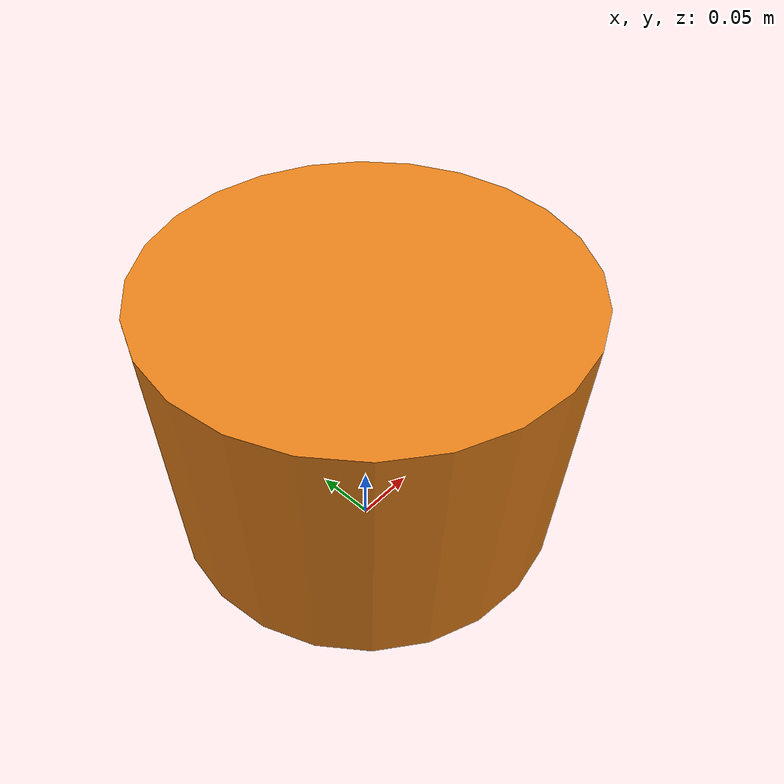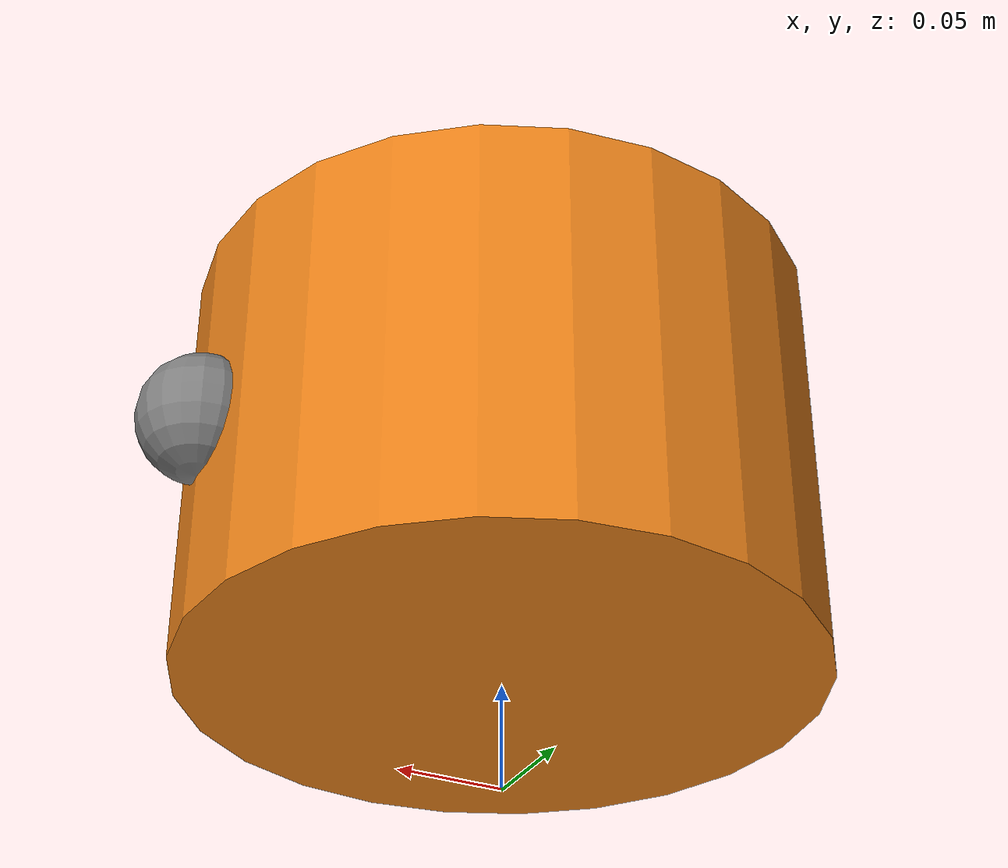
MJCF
<mujoco>

    <compiler autolimits="true"/>

    <default>
        <joint damping="0.1"/>
        <geom contype="1"
              conaffinity="1"/>
    </default>

    <worldbody>

        <!-- robot -->

        <body name="robot"
              pos="0 0 0.15">

            <joint name="tx"
                   type="slide"
                   axis="1 0 0"/>

            <joint name="ty"
                   type="slide"
                   axis="0 1 0"/>

            <!-- rotation -->
            <joint name="rz"
                   type="hinge"
                   axis="0 0 1"/>

            <geom
                name="robot_body"
                type="cylinder"
                size="0.15 0.1"
                rgba="0.9 0.5 0.1 1"/>

            <site
                name="front"
                pos="0.15 0 0"
                size="0.03"/>

            <camera
                name="robot_camera"
                pos="0.22 0 0.50"
                xyaxes="0 -1 0 0.35 0 0.94"
                fovy="70"/>

        </body>

    </worldbody>

    <actuator>

        <velocity
            name="vx"
            joint="tx"
            ctrlrange="-4.5 4.5"
            kv="420"/>

        <velocity
            name="vy"
            joint="ty"
            ctrlrange="-4.5 4.5"
            kv="240"/>

        <velocity
            name="wz"
            joint="rz"
            ctrlrange="-2 2"
            kv="50"/>

    </actuator>

</mujoco>
